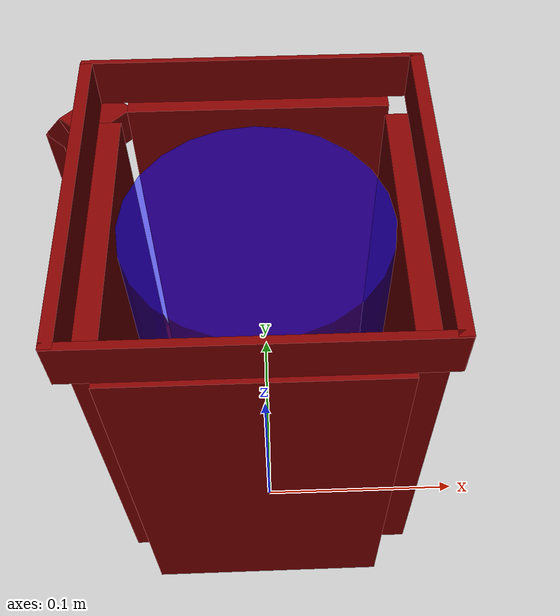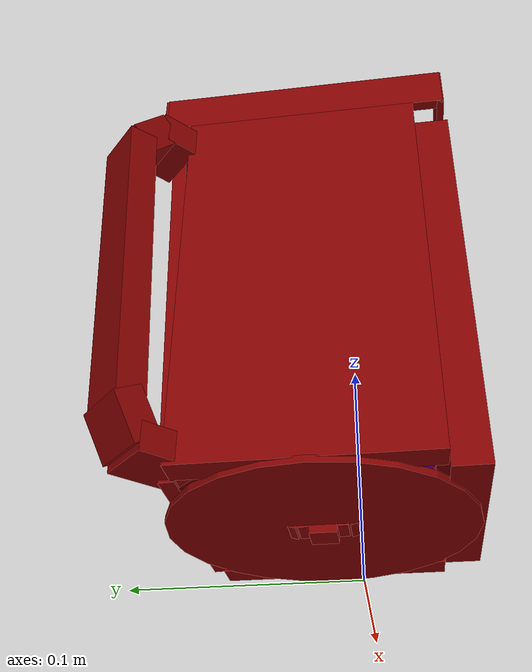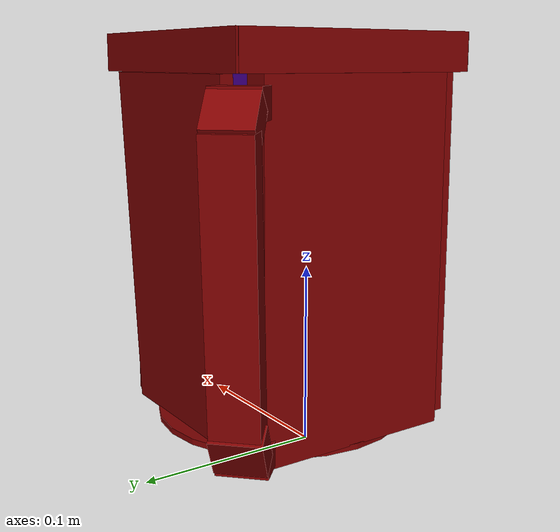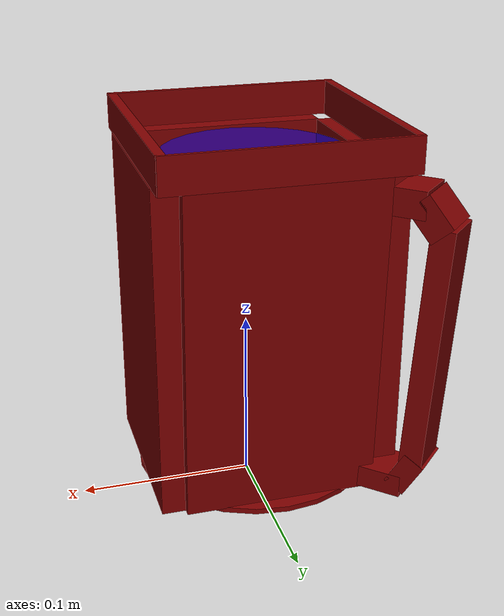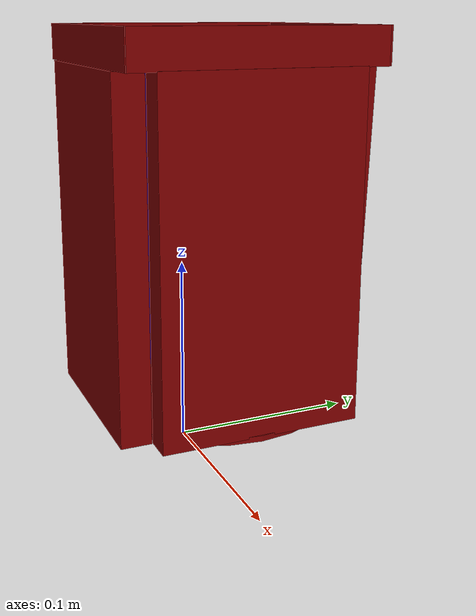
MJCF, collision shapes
<mujoco model="model">
  <option timestep="0.002" gravity="0.0 0.0 -9.81"/>
  <compiler angle="radian"/>
  <asset>
    <mesh file="visuals/blade.obj" name="blade_vis"/>
    <mesh file="visuals/pitcher.obj" name="pitcher_vis"/>
    <mesh file="visuals/pitcher_main.obj" name="pitcher_main_vis"/>
    <texture file="visuals/T_BC001.png" name="pitcher_material" type="2d"/>
    <material name="pitcher_material" rgba="1 1 1 1.0" texture="pitcher_material" shininess="0.7700482308864594" specular="0.9103448502657381"/>
    <texture file="visuals/T_BC001.png" name="blade_material" type="2d"/>
    <material name="blade_material" rgba="1 1 1 1.0" texture="blade_material" shininess="0.7700482308864594" specular="2.3103448502657381"/>
    <texture file="visuals/T_BC001.png" name="pitcher_main_material" type="2d"/>
    <material name="pitcher_main_material" rgba="1 1 1 0.800000011920929" texture="pitcher_main_material" shininess="0.7700482308864594" specular="0.3103448502657381"/>
  </asset>
  <default>
    <default class="visual">
      <geom conaffinity="0" contype="0" group="1" type="mesh"/>
    </default>
    <default class="collision">
      <geom group="0" rgba="0.5 0 0 0.5" density="1000" solref="0.004 1" solimp="0.998 0.998 0.001"/>
    </default>
    <default class="spawn">
      <geom group="0" rgba="1 1 1 0.5" contype="0" conaffinity="0"/>
      <site group="0" rgba="1 1 1 0.5"/>
    </default>
    <default class="region">
      <geom group="1" conaffinity="0" contype="0" rgba="0 1 0 0" mass="0"/>
    </default>
  </default>
  <worldbody>
    <body>
      <body name="object">
        <body name="pitcher">
          <geom mesh="pitcher_vis" type="mesh" solimp="0.998 0.998 0.001" solref="0.001 1" friction="0.95 0.3 0.1" class="visual" material="pitcher_material"/>
          <geom class="collision" type="box" pos="-0.07478996 0.09117244 0.11543127" size="0.011951700784265995 0.006453691981732845 0.06791377812623978" quat="0.9231506586074829 -0.029291750863194466 -0.012156728655099869 0.38312798738479614" name="pitcher_handle_1"/>
          <geom class="collision" type="box" pos="-0.06497423 0.08159496 0.19390878" size="0.011959709227085114 0.00865696556866169 0.007378702983260155" quat="0.9236152768135071 0.0 0.0 0.38332080841064453" name="pitcher_handle_2"/>
          <geom class="collision" type="box" pos="-0.05845841 0.07435066 0.03288266" size="0.012522098608314991 0.01429979968816042 0.006272301077842712" quat="0.9236152768135071 -2.5921023660835374e-10 6.245695627349335e-10 0.3833208382129669" name="pitcher_handle_0"/>
          <geom type="cylinder" pos="0.00034438 0.01651172 0.02433396" size="0.06772742420434952 0.0015224376693367958" quat="1.0 0.0 0.0 0.0" class="collision"/>
          <geom class="collision" type="box" pos="-0.07268012 0.08927961 0.18746170" size="0.011959709227085114 0.010367041453719139 0.00737870205193758" quat="0.8393899202346802 -0.38534361124038696 -0.15992611646652222 0.34836545586586" name="pitcher_handle_3"/>
          <geom class="collision" type="box" pos="-0.06991799 0.08577864 0.04140540" size="0.012522098608314991 0.010928334668278694 0.006272301077842712" quat="0.7978094816207886 0.4653656482696533 0.19313709437847137 0.33110862970352173" name="pitcher_handle_4"/>
          <body name="blade">
            <geom mesh="blade_vis" type="mesh" solimp="0.998 0.998 0.001" solref="0.001 1" friction="0.95 0.3 0.1" class="visual" material="blade_material"/>
            <geom type="box" pos="-0.00000500 0.01627119 0.02811437" size="0.006796702742576599 0.006033340003341436 0.008870548568665981" quat="1.0 0.0 0.0 0.0" class="collision"/>
            <geom type="box" pos="-0.00000500 0.04103009 0.02736291" size="0.006796702742576599 0.014025045558810234 0.0017386107938364148" quat="0.9905418157577515 0.13721105456352234 -3.046707035485529e-17 2.4156720506807417e-25" class="collision"/>
            <geom type="box" pos="-0.00005982 0.02464923 0.02395237" size="0.006735978182405233 0.0023647986818104982 0.0017699705203995109" quat="1.0 0.0 0.0 0.0" class="collision"/>
            <geom type="box" pos="-0.00001141 0.05511524 0.03530011" size="0.005444969050586224 0.001163806882686913 0.002927056048065424" quat="1.0 0.0 0.0 0.0" class="collision"/>
            <geom type="box" pos="-0.00001141 -0.02262257 0.03530011" size="0.005444969050586224 0.0011247117072343826 0.0029121816623955965" quat="0.9999773502349854 -0.006730015389621258 -1.4943602996053826e-18 1.4482614528557508e-24" class="collision"/>
            <geom type="box" pos="-0.00005982 0.00784345 0.02395237" size="0.006735978182405233 0.0023416096810251474 0.0017386107938364148" quat="0.9999773502349854 -0.006730015389621258 -1.4943602996053826e-18 1.4482614528557508e-24" class="collision"/>
            <geom type="box" pos="-0.00000500 -0.00853742 0.02736291" size="0.006796702742576599 0.014025045558810234 0.0017386107938364148" quat="0.9905418157577515 -0.13721105456352234 -3.046707035485529e-17 -1.4706026839449019e-24" class="collision"/>
            <geom type="box" pos="-0.01777174 0.01702153 0.03881373" size="0.0015928685897961259 0.005283007398247719 0.012411748059093952" quat="0.9287297129631042 -5.471797459577488e-10 -0.370757520198822 -4.8397581053905014e-08" class="collision"/>
            <geom type="box" pos="0.01749905 0.01553993 0.03881373" size="0.0015928685897961259 0.005283007398247719 0.012411748059093952" quat="0.9287297129631042 -5.472046704646516e-10 0.37075746059417725 4.839776579501631e-08" class="collision"/>
            <geom type="box" pos="-0.00088261 0.00442632 0.04322277" size="0.0009584952495060861 0.005283007398247719 0.012411748059093952" quat="0.703269898891449 0.07356300204992294 0.07356306165456772 -0.7032698392868042" class="collision"/>
            <geom type="box" pos="0.00083358 0.02796458 0.04322277" size="0.0009584952495060861 0.005283007398247719 0.012411748059093952" quat="0.703269898891449 -0.07356300950050354 0.07356306165456772 0.7032698392868042" class="collision"/>
          </body>
          <body name="pitcher_main">
            <geom class="region" type="cylinder" size="0.051534075289964676 0.07440784573554993" pos="-0.00000500 0.01629260 0.13026517" rgba="0 0 1 0.5" name="reg_int"/>
            <geom mesh="pitcher_main_vis" type="mesh" solimp="0.998 0.998 0.001" solref="0.001 1" friction="0.95 0.3 0.1" class="visual" material="pitcher_main_material"/>
            <geom type="box" pos="0.00162357 0.07611021 0.11571105" size="0.05276477709412575 0.003327916609123349 0.09030888229608536" quat="0.9997986555099487 -0.020065851509571075 0.0 0.0" class="collision"/>
            <geom type="box" pos="-0.00154144 -0.04420170 0.11504211" size="0.05276710167527199 0.00800911895930767 0.09103607386350632" quat="1.0 0.0 0.0 0.0" class="collision"/>
            <geom type="box" pos="-0.05997258 0.01734943 0.11564595" size="0.006826202385127544 0.05306067690253258 0.09043478965759277" quat="1.0 0.0 0.0 0.0" class="collision"/>
            <geom type="box" pos="0.05966715 0.01735006 0.11570717" size="0.007471128832548857 0.053433459252119064 0.09090543538331985" quat="1.0 0.0 0.0 0.0" class="collision"/>
            <geom type="box" pos="0.06388546 0.01642815 0.21585156" size="0.002611522562801838 0.06615706533193588 0.009743143804371357" quat="1.0 0.0 0.0 0.0" class="collision"/>
            <geom type="box" pos="-0.06417845 0.01642815 0.21585156" size="0.0023299800232052803 0.06615706533193588 0.009743143804371357" quat="1.0 0.0 0.0 0.0" class="collision"/>
            <geom type="box" pos="-0.00007778 0.08290062 0.21585156" size="0.06615706533193588 0.0009990411344915628 0.009743143804371357" quat="1.0 0.0 0.0 0.0" class="collision"/>
            <geom type="box" pos="-0.00007778 -0.04868844 0.21585156" size="0.06615706533193588 0.0015682568773627281 0.009743143804371357" quat="1.0 0.0 0.0 0.0" class="collision"/>
          </body>
        </body>
        <geom class="region" name="reg_bbox" density="0" type="box" pos="-0.007581499999999998 0.023449499999999998 0.1173095" size="0.08025650000000001 0.0809395 0.10830150000000001"/>
      </body>
      <site rgba="0 1 0 0" size="0.001" pos="-0.000 0.01577748 0.230226" name="anchor_site"/>
    </body>
  </worldbody>
</mujoco>
